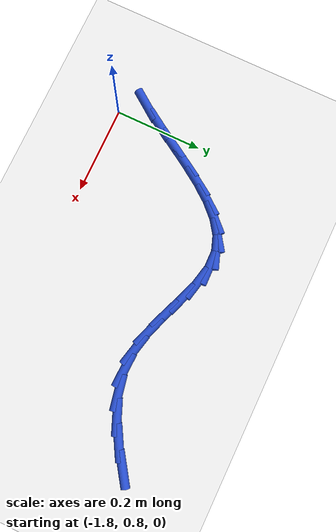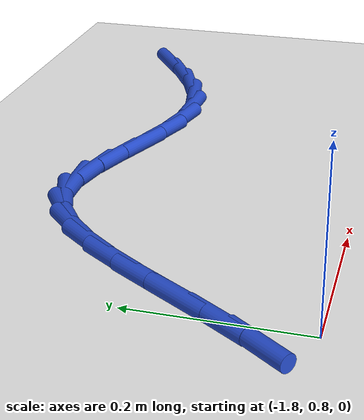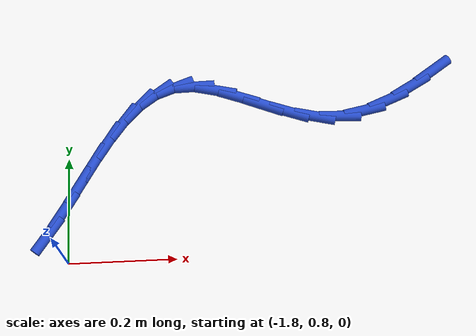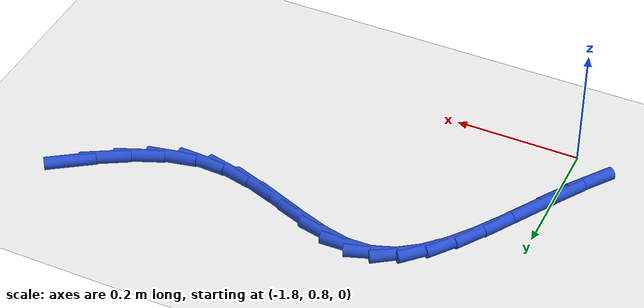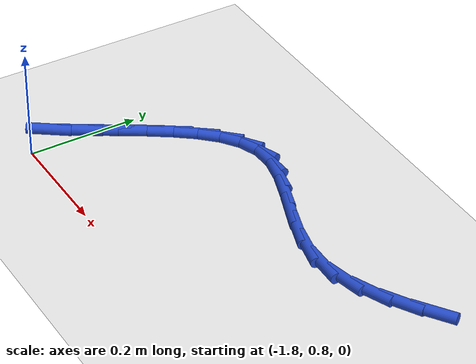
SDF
<sdf version="1.6">
 <world name="default">
  <model name="ground_plane">
   <static>1</static>
   <link name="link">
    <collision name="collision">
     <geometry><plane><normal>0 0 1</normal><size>100 100</size></plane></geometry>
     <surface><friction><ode><mu>100</mu><mu2>50</mu2></ode></friction></surface>
    </collision>
    <visual name="visual">
     <cast_shadows>0</cast_shadows>
     <geometry><plane><normal>0 0 1</normal><size>100 100</size></plane></geometry>
     <material>
      <script><uri>file://media/materials/scripts/gazebo.material</uri><name>Gazebo/WhiteGlow</name></script>
     </material>
    </visual>
   </link>
  </model>
  <model name="line">
   <link name="link_40">
    <pose>-1.098851210333628 1.148412813737576 0.01 0 1.57 0.5994475709941217</pose>
    <collision name="collision">
     <geometry><cylinder><radius>0.01</radius><length>0.08</length></cylinder></geometry>
    </collision>
    <visual name="visual">
     <material>
      <script><name>Gazebo/Blue</name><uri>file://media/materials/scripts/gazebo.material</uri></script>
     </material>
     <geometry><cylinder><radius>0.01</radius><length>0.08</length></cylinder></geometry>
    </visual>
   </link>
   <link name="link_41">
    <pose>-1.1434441656516106 1.117941282377124 0.01 0 1.57 0.5181736623008475</pose>
    <collision name="collision">
     <geometry><cylinder><radius>0.01</radius><length>0.08</length></cylinder></geometry>
    </collision>
    <visual name="visual">
     <material>
      <script><name>Gazebo/Blue</name><uri>file://media/materials/scripts/gazebo.material</uri></script>
     </material>
     <geometry><cylinder><radius>0.01</radius><length>0.08</length></cylinder></geometry>
    </visual>
   </link>
   <link name="link_42">
    <pose>-1.1890852379048331 1.0919195133832826 0.01 0 1.57 0.3888629655359301</pose>
    <collision name="collision">
     <geometry><cylinder><radius>0.01</radius><length>0.08</length></cylinder></geometry>
    </collision>
    <visual name="visual">
     <material>
      <script><name>Gazebo/Blue</name><uri>file://media/materials/scripts/gazebo.material</uri></script>
     </material>
     <geometry><cylinder><radius>0.01</radius><length>0.08</length></cylinder></geometry>
    </visual>
   </link>
   <link name="link_43">
    <pose>-1.2356757643236196 1.0728301456177496 0.01 0 1.57 0.20116383879066754</pose>
    <collision name="collision">
     <geometry><cylinder><radius>0.01</radius><length>0.08</length></cylinder></geometry>
    </collision>
    <visual name="visual">
     <material>
      <script><name>Gazebo/Blue</name><uri>file://media/materials/scripts/gazebo.material</uri></script>
     </material>
     <geometry><cylinder><radius>0.01</radius><length>0.08</length></cylinder></geometry>
    </visual>
   </link>
   <link name="link_44">
    <pose>-1.283117082138293 1.0631558179422218 0.01 0 1.57 -0.03508029669718921</pose>
    <collision name="collision">
     <geometry><cylinder><radius>0.01</radius><length>0.08</length></cylinder></geometry>
    </collision>
    <visual name="visual">
     <material>
      <script><name>Gazebo/Blue</name><uri>file://media/materials/scripts/gazebo.material</uri></script>
     </material>
     <geometry><cylinder><radius>0.01</radius><length>0.08</length></cylinder></geometry>
    </visual>
   </link>
   <link name="link_45">
    <pose>-1.3312590786945586 1.0648453465818528 0.01 0 1.57 -0.22355577004431154</pose>
    <collision name="collision">
     <geometry><cylinder><radius>0.01</radius><length>0.08</length></cylinder></geometry>
    </collision>
    <visual name="visual">
     <material>
      <script><name>Gazebo/Blue</name><uri>file://media/materials/scripts/gazebo.material</uri></script>
     </material>
     <geometry><cylinder><radius>0.01</radius><length>0.08</length></cylinder></geometry>
    </visual>
   </link>
   <link name="link_46">
    <pose>-1.3795642185034473 1.0758278093191909 0.01 0 1.57 -0.33030439406185547</pose>
    <collision name="collision">
     <geometry><cylinder><radius>0.01</radius><length>0.08</length></cylinder></geometry>
    </collision>
    <visual name="visual">
     <material>
      <script><name>Gazebo/Blue</name><uri>file://media/materials/scripts/gazebo.material</uri></script>
     </material>
     <geometry><cylinder><radius>0.01</radius><length>0.08</length></cylinder></geometry>
    </visual>
   </link>
   <link name="link_47">
    <pose>-1.4273184737146294 1.092201072489549 0.01 0 1.57 -0.3666578080271962</pose>
    <collision name="collision">
     <geometry><cylinder><radius>0.01</radius><length>0.08</length></cylinder></geometry>
    </collision>
    <visual name="visual">
     <material>
      <script><name>Gazebo/Blue</name><uri>file://media/materials/scripts/gazebo.material</uri></script>
     </material>
     <geometry><cylinder><radius>0.01</radius><length>0.08</length></cylinder></geometry>
    </visual>
   </link>
   <link name="link_48">
    <pose>-1.473806921072066 1.1100537120704284 0.01 0 1.57 -0.3335266691055806</pose>
    <collision name="collision">
     <geometry><cylinder><radius>0.01</radius><length>0.08</length></cylinder></geometry>
    </collision>
    <visual name="visual">
     <material>
      <script><name>Gazebo/Blue</name><uri>file://media/materials/scripts/gazebo.material</uri></script>
     </material>
     <geometry><cylinder><radius>0.01</radius><length>0.08</length></cylinder></geometry>
    </visual>
   </link>
   <link name="link_49">
    <pose>-1.5183146373197172 1.125474304039331 0.01 0 1.57 -0.2137761515112165</pose>
    <collision name="collision">
     <geometry><cylinder><radius>0.01</radius><length>0.08</length></cylinder></geometry>
    </collision>
    <visual name="visual">
     <material>
      <script><name>Gazebo/Blue</name><uri>file://media/materials/scripts/gazebo.material</uri></script>
     </material>
     <geometry><cylinder><radius>0.01</radius><length>0.08</length></cylinder></geometry>
    </visual>
   </link>
   <link name="link_50">
    <pose>-1.5601266992015428 1.1345514243737571 0.01 0 1.57 0.0283785797063838</pose>
    <collision name="collision">
     <geometry><cylinder><radius>0.01</radius><length>0.08</length></cylinder></geometry>
    </collision>
    <visual name="visual">
     <material>
      <script><name>Gazebo/Blue</name><uri>file://media/materials/scripts/gazebo.material</uri></script>
     </material>
     <geometry><cylinder><radius>0.01</radius><length>0.08</length></cylinder></geometry>
    </visual>
   </link>
   <link name="link_51">
    <pose>-1.5985497778082318 1.1334607391670468 0.01 0 1.57 0.34462796720672234</pose>
    <collision name="collision">
     <geometry><cylinder><radius>0.01</radius><length>0.08</length></cylinder></geometry>
    </collision>
    <visual name="visual">
     <material>
      <script><name>Gazebo/Blue</name><uri>file://media/materials/scripts/gazebo.material</uri></script>
     </material>
     <geometry><cylinder><radius>0.01</radius><length>0.08</length></cylinder></geometry>
    </visual>
   </link>
   <link name="link_52">
    <pose>-1.6335180821489232 1.1209087782937548 0.01 0 1.57 0.6093030647202164</pose>
    <collision name="collision">
     <geometry><cylinder><radius>0.01</radius><length>0.08</length></cylinder></geometry>
    </collision>
    <visual name="visual">
     <material>
      <script><name>Gazebo/Blue</name><uri>file://media/materials/scripts/gazebo.material</uri></script>
     </material>
     <geometry><cylinder><radius>0.01</radius><length>0.08</length></cylinder></geometry>
    </visual>
   </link>
   <link name="link_53">
    <pose>-1.6656760254222533 1.0984663289228764 0.01 0 1.57 0.7949274883063177</pose>
    <collision name="collision">
     <geometry><cylinder><radius>0.01</radius><length>0.08</length></cylinder></geometry>
    </collision>
    <visual name="visual">
     <material>
      <script><name>Gazebo/Blue</name><uri>file://media/materials/scripts/gazebo.material</uri></script>
     </material>
     <geometry><cylinder><radius>0.01</radius><length>0.08</length></cylinder></geometry>
    </visual>
   </link>
   <link name="link_54">
    <pose>-1.6957062278364077 1.0678582672972519 0.01 0 1.57 0.9136438831790281</pose>
    <collision name="collision">
     <geometry><cylinder><radius>0.01</radius><length>0.08</length></cylinder></geometry>
    </collision>
    <visual name="visual">
     <material>
      <script><name>Gazebo/Blue</name><uri>file://media/materials/scripts/gazebo.material</uri></script>
     </material>
     <geometry><cylinder><radius>0.01</radius><length>0.08</length></cylinder></geometry>
    </visual>
   </link>
   <link name="link_55">
    <pose>-1.724291309599572 1.0308094696597208 0.01 0 1.57 0.9831340081159935</pose>
    <collision name="collision">
     <geometry><cylinder><radius>0.01</radius><length>0.08</length></cylinder></geometry>
    </collision>
    <visual name="visual">
     <material>
      <script><name>Gazebo/Blue</name><uri>file://media/materials/scripts/gazebo.material</uri></script>
     </material>
     <geometry><cylinder><radius>0.01</radius><length>0.08</length></cylinder></geometry>
    </visual>
   </link>
   <link name="link_56">
    <pose>-1.7521138909199319 0.9890448122531216 0.01 0 1.57 1.0158941542658542</pose>
    <collision name="collision">
     <geometry><cylinder><radius>0.01</radius><length>0.08</length></cylinder></geometry>
    </collision>
    <visual name="visual">
     <material>
      <script><name>Gazebo/Blue</name><uri>file://media/materials/scripts/gazebo.material</uri></script>
     </material>
     <geometry><cylinder><radius>0.01</radius><length>0.08</length></cylinder></geometry>
    </visual>
   </link>
   <link name="link_57">
    <pose>-1.7798565920056721 0.9442891713202944 0.01 0 1.57 1.018757428790506</pose>
    <collision name="collision">
     <geometry><cylinder><radius>0.01</radius><length>0.08</length></cylinder></geometry>
    </collision>
    <visual name="visual">
     <material>
      <script><name>Gazebo/Blue</name><uri>file://media/materials/scripts/gazebo.material</uri></script>
     </material>
     <geometry><cylinder><radius>0.01</radius><length>0.08</length></cylinder></geometry>
    </visual>
   </link>
   <link name="link_58">
    <pose>-1.8082020330649786 0.898267423104078 0.01 0 1.57 0.9941917937083741</pose>
    <collision name="collision">
     <geometry><cylinder><radius>0.01</radius><length>0.08</length></cylinder></geometry>
    </collision>
    <visual name="visual">
     <material>
      <script><name>Gazebo/Blue</name><uri>file://media/materials/scripts/gazebo.material</uri></script>
     </material>
     <geometry><cylinder><radius>0.01</radius><length>0.08</length></cylinder></geometry>
    </visual>
   </link>
   <link name="link_59">
    <pose>-1.8378328343060366 0.8527044438473126 0.01 0 1.57 0.9412439397898769</pose>
    <collision name="collision">
     <geometry><cylinder><radius>0.01</radius><length>0.08</length></cylinder></geometry>
    </collision>
    <visual name="visual">
     <material>
      <script><name>Gazebo/Blue</name><uri>file://media/materials/scripts/gazebo.material</uri></script>
     </material>
     <geometry><cylinder><radius>0.01</radius><length>0.08</length></cylinder></geometry>
    </visual>
   </link>
  </model>
 </world>
</sdf>
